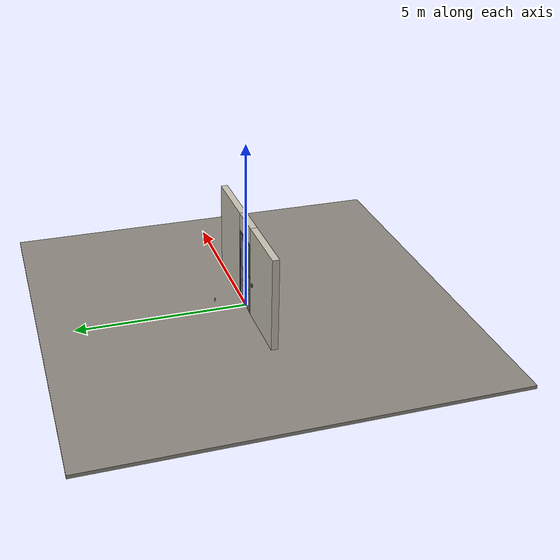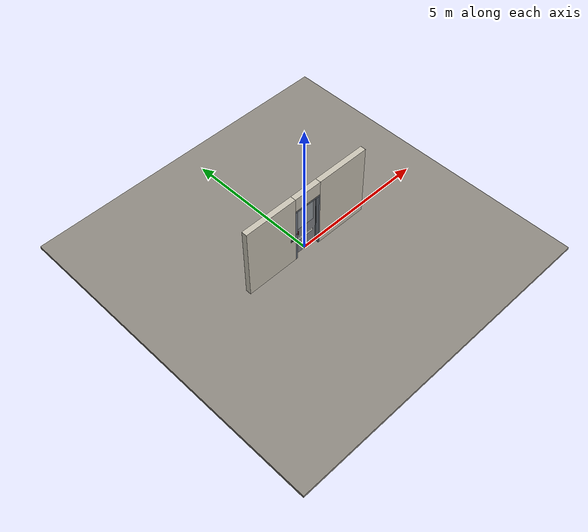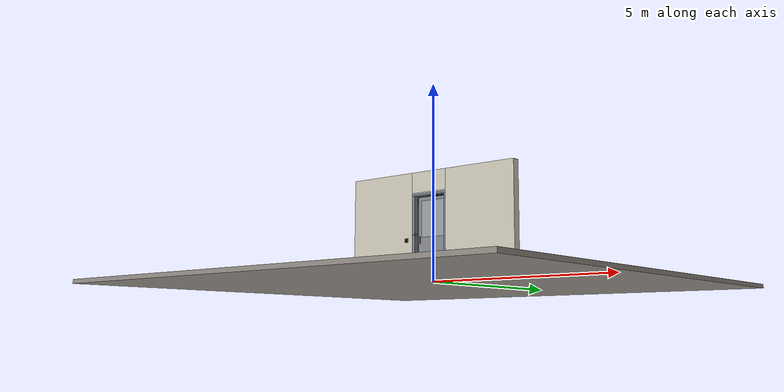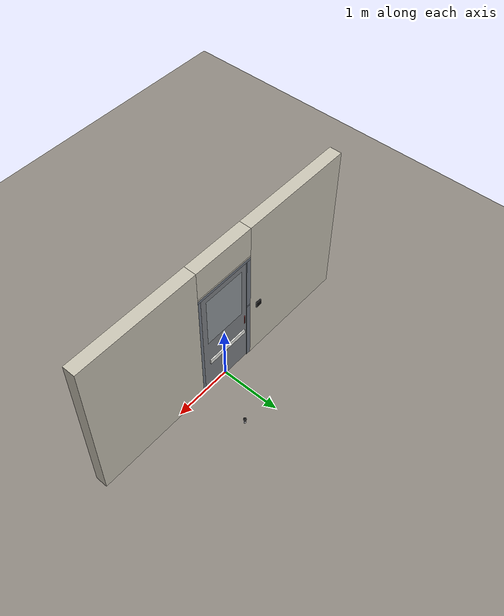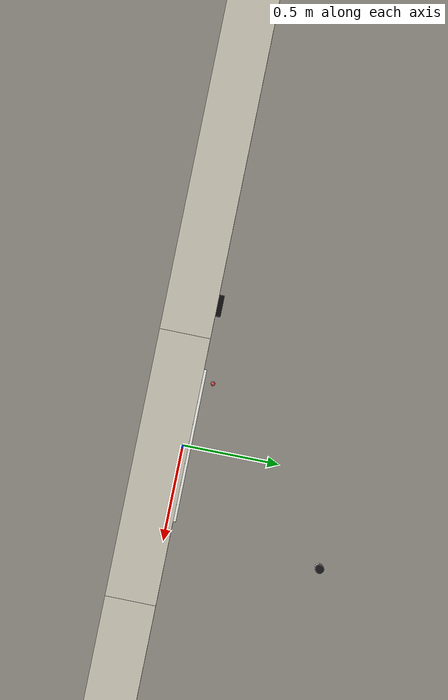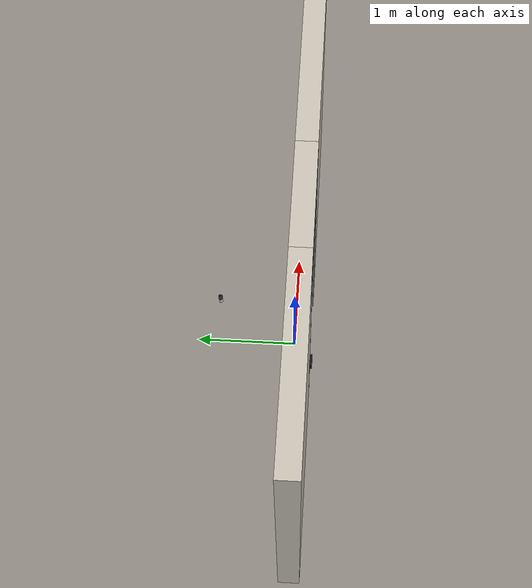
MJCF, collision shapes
<?xml version="1.0" ?>
<mujoco model="db0102_automatic_swing_full">
  <compiler angle="radian" meshdir="../../hardware" texturedir="../../textures" autolimits="true" inertiafromgeom="false"/>
  <option timestep="0.002" integrator="implicitfast" cone="elliptic" impratio="10" noslip_iterations="3">
    <flag multiccd="enable"/>
  </option>
  <size memory="16M"/>
  <default>
    <geom condim="4" solref="0.005 1" solimp="0.95 0.99 0.001"/>
    <joint solreflimit="0.005 1" solimplimit="0.95 0.99 0.001"/>
    <tendon solreflimit="0.005 1"/>
    <equality solref="0.002 1"/>
  </default>
  <visual>
    <headlight ambient="0.4 0.4 0.4" diffuse="0.7 0.7 0.7" specular="0.2 0.2 0.2"/>
    <quality shadowsize="4096"/>
    <map znear="0.01" zfar="60"/>
  </visual>
  <asset>
    <mesh name="cyl_face_e9e5036966" file="cyl_face_e9e5036966.obj"/>
    <mesh name="hinge_e22b26c0c1" file="hinge_e22b26c0c1.obj"/>
    <mesh name="hinge_jamb_e1d088f8dc" file="hinge_jamb_e1d088f8dc.obj"/>
    <mesh name="pull_1e5d69a91a" file="pull_1e5d69a91a.obj"/>
    <material name="mat_floor" rgba="0.55 0.53 0.5 1" specular="0.2" shininess="0.15" reflectance="0"/>
    <material name="mat_wall" rgba="0.78 0.76 0.7 1" specular="0.2" shininess="0.1" reflectance="0"/>
    <material name="mat_leaf" rgba="0.5 0.51 0.53 1" specular="0.23" shininess="0.42" reflectance="0.02"/>
    <material name="mat_glass" rgba="0.85 0.92 0.95 0.25" specular="0.2" shininess="0.95" reflectance="0.1"/>
    <material name="mat_hinge" rgba="0.65 0.66 0.68 1" specular="0.74" shininess="0.5" reflectance="0.36"/>
    <material name="mat_op_stainless" rgba="0.75 0.76 0.77 1" specular="0.8" shininess="0.65" reflectance="0.4"/>
    <material name="mat_deadbolt" rgba="0.85 0.66 0.3 1" specular="0.8" shininess="0.75" reflectance="0.4"/>
    <material name="mat_frame" rgba="0.45 0.48 0.52 1" specular="0.32" shininess="0.6" reflectance="0.08"/>
    <material name="mat_seal" rgba="0.1 0.1 0.1 1" specular="0.2" shininess="0.1" reflectance="0"/>
    <material name="mat_closer" rgba="0.22 0.17 0.13 1" specular="0.8" shininess="0.6" reflectance="0.4"/>
    <material name="mat_bumper" rgba="0.92 0.92 0.9 1" specular="0.2" shininess="0.6" reflectance="0"/>
    <material name="mat_wallreader" rgba="0.05 0.05 0.05 1" specular="0.38" shininess="0.3" reflectance="0.12"/>
    <material name="mat_bumper_stop" rgba="0.08 0.08 0.08 1" specular="0.2" shininess="0.1" reflectance="0"/>
    <material name="mat_stop_base" rgba="0.9 0.9 0.92 1" specular="0.8" shininess="0.9" reflectance="0.4"/>
    <texture name="skybox" type="skybox" builtin="gradient" rgb1="0.6 0.7 0.85" rgb2="0.9 0.92 0.95" width="256" height="256"/>
  </asset>
  <worldbody>
    <light name="sun" pos="1.5 -2.5 4" dir="-0.3 0.5 -0.8" directional="true" diffuse="0.8 0.8 0.8" specular="0.3 0.3 0.3" castshadow="true"/>
    <light name="fill" pos="-1.5 2.5 3" dir="0.3 -0.5 -0.7" directional="true" diffuse="0.35 0.35 0.4" castshadow="false"/>
    <camera name="robot_view" pos="0 -2.708813 1.812087" xyaxes="1 0 0 0 0.26963 0.962964" fovy="52"/>
    <camera name="far_view" pos="0 2.566812 1.812087" xyaxes="-1 0 0 0 -0.26963 0.962964" fovy="52"/>
    <camera name="iso" pos="-2.004737 -2.286763 2.234138" xyaxes="0.741536 -0.670913 0 0.242917 0.268487 0.932151" fovy="46"/>
    <camera name="detail_handle" pos="-0.1715 -0.882 1.32" xyaxes="0.97561 0.219512 0 -0.070934 0.315262 0.94635" fovy="38"/>
    <geom name="floor" type="box" size="6 6 0.05" pos="0 0 -0.05" material="mat_floor" group="0" contype="1" conaffinity="1" friction="0.8 0.005 0.0001" density="2400"/>
    <geom name="wall_left" type="box" size="0.97975 0.1 1.3735" pos="-1.52025 -0.071 1.3735" material="mat_wall" group="0" contype="1" conaffinity="1" friction="0.6 0.005 0.0001" density="800"/>
    <geom name="wall_right" type="box" size="0.99475 0.1 1.3735" pos="1.50525 -0.071 1.3735" material="mat_wall" group="0" contype="1" conaffinity="1" friction="0.6 0.005 0.0001" density="800"/>
    <geom name="wall_header" type="box" size="0.5255 0.1 0.26" pos="-0.015 -0.071 2.487" material="mat_wall" group="0" contype="1" conaffinity="1" friction="0.6 0.005 0.0001" density="800"/>
    <geom name="hinge_0_jamb" type="mesh" mesh="hinge_jamb_e1d088f8dc" pos="0.4575 0.029 0.259" quat="0 0 0 1" material="mat_hinge" group="1" contype="0" conaffinity="0" density="7850"/>
    <geom name="hinge_1_jamb" type="mesh" mesh="hinge_jamb_e1d088f8dc" pos="0.4575 0.029 1.076" quat="0 0 0 1" material="mat_hinge" group="1" contype="0" conaffinity="0" density="7850"/>
    <geom name="hinge_2_jamb" type="mesh" mesh="hinge_jamb_e1d088f8dc" pos="0.4575 0.029 1.963" quat="0 0 0 1" material="mat_hinge" group="1" contype="0" conaffinity="0" density="7850"/>
    <geom name="leaf_deadbolt_strike_b" type="box" size="0.0155 0.003 0.0005" pos="-0.46 0 1.1615" quat="0.5 0.5 0.5 0.5" material="mat_deadbolt" group="1" contype="0" conaffinity="0" density="7800"/>
    <geom name="leaf_deadbolt_strike_l" type="box" size="0.003 0.0155 0.0005" pos="-0.46 -0.0125 1.18" quat="0.5 0.5 0.5 0.5" material="mat_deadbolt" group="1" contype="0" conaffinity="0" density="7800"/>
    <geom name="leaf_deadbolt_strike_t" type="box" size="0.0155 0.003 0.0005" pos="-0.46 0 1.1985" quat="0.5 0.5 0.5 0.5" material="mat_deadbolt" group="1" contype="0" conaffinity="0" density="7800"/>
    <geom name="leaf_deadbolt_strike_r" type="box" size="0.003 0.0155 0.0005" pos="-0.46 0.0125 1.18" quat="0.5 0.5 0.5 0.5" material="mat_deadbolt" group="1" contype="0" conaffinity="0" density="7800"/>
    <geom name="jamb_hinge" type="box" size="0.025 0.1 1.0735" pos="0.4855 -0.071 1.0735" material="mat_frame" group="0" contype="1" conaffinity="1" friction="0.6 0.005 0.0001" density="300"/>
    <geom name="strike_1180_wall_n" type="box" size="0.04 0.08075 0.0155" pos="-0.5005 -0.09025 1.18" material="mat_frame" group="0" contype="1" conaffinity="1" friction="0.6 0.005 0.0001" density="300"/>
    <geom name="strike_1180_wall_p" type="box" size="0.04 0.00975 0.0155" pos="-0.5005 0.01925 1.18" material="mat_frame" group="0" contype="1" conaffinity="1" friction="0.6 0.005 0.0001" density="300"/>
    <geom name="strike_1180_back" type="box" size="0.0253 0.0095 0.0155" pos="-0.5152 0 1.18" material="mat_frame" group="0" contype="1" conaffinity="1" friction="0.6 0.005 0.0001" density="300"/>
    <geom name="jamb_strike_0" type="box" size="0.04 0.1 0.58225" pos="-0.5005 -0.071 0.58225" material="mat_frame" group="0" contype="1" conaffinity="1" friction="0.6 0.005 0.0001" density="300"/>
    <geom name="jamb_strike_1" type="box" size="0.04 0.1 0.47575" pos="-0.5005 -0.071 1.67125" material="mat_frame" group="0" contype="1" conaffinity="1" friction="0.6 0.005 0.0001" density="300"/>
    <geom name="jamb_head" type="box" size="0.5255 0.1 0.025" pos="-0.015 -0.071 2.172" material="mat_frame" group="0" contype="1" conaffinity="1" friction="0.6 0.005 0.0001" density="300"/>
    <geom name="head_stud" type="box" size="0.5255 0.1 0.015" pos="-0.015 -0.071 2.212" material="mat_wall" group="0" contype="1" conaffinity="1" friction="0.6 0.005 0.0001" density="500"/>
    <geom name="stop_hinge" type="box" size="0.0055 0.016 1.0735" pos="0.455 -0.0385 1.0735" material="mat_frame" group="0" contype="1" conaffinity="1" friction="0.6 0.005 0.0001" density="300"/>
    <geom name="stop_strike" type="box" size="0.0055 0.016 1.0735" pos="-0.455 -0.0385 1.0735" material="mat_frame" group="0" contype="1" conaffinity="1" friction="0.6 0.005 0.0001" density="300"/>
    <geom name="stop_head" type="box" size="0.4605 0.016 0.0055" pos="0 -0.0385 2.1415" material="mat_frame" group="0" contype="1" conaffinity="1" friction="0.6 0.005 0.0001" density="300"/>
    <geom name="seal_hinge" type="box" size="0.004 0.004 1.0735" pos="0.4575 -0.026 1.0735" material="mat_seal" group="1" contype="0" conaffinity="0" density="1100"/>
    <geom name="seal_strike" type="box" size="0.004 0.004 1.0735" pos="-0.4575 -0.026 1.0735" material="mat_seal" group="1" contype="0" conaffinity="0" density="1100"/>
    <geom name="seal_head" type="box" size="0.4405 0.004 0.008" pos="0 -0.026 2.135" material="mat_seal" group="1" contype="0" conaffinity="0" density="1100"/>
    <geom name="auto_operator_header" type="box" size="0.45 0.065 0.065" pos="0 -0.097 2.228" material="mat_closer" group="0" contype="1" conaffinity="1" friction="0.6 0.005 0.0001" density="1500"/>
    <geom name="wave_sensor_n" type="box" size="0.05 0.012 0.05" pos="-0.7105 -0.183 1.05" material="mat_wallreader" group="0" contype="1" conaffinity="1" friction="0.6 0.005 0.0001" density="1000"/>
    <geom name="wave_sensor_p" type="box" size="0.05 0.012 0.05" pos="-0.7105 0.041 1.05" material="mat_wallreader" group="0" contype="1" conaffinity="1" friction="0.6 0.005 0.0001" density="1000"/>
    <geom name="wave_sensor_p_pad" type="box" size="0.04 0.1005 0.04" pos="-0.7105 -0.071 1.05" material="mat_wallreader" group="1" contype="0" conaffinity="0" density="7850"/>
    <geom name="door_stop_base" type="cylinder" size="0.022 0.003" pos="0.4735 0.8059 0.003" material="mat_stop_base" group="0" contype="1" conaffinity="1" friction="0.6 0.005 0.0001" density="7850"/>
    <geom name="door_stop_post" type="cylinder" size="0.012 0.0245" pos="0.4735 0.8059 0.0305" material="mat_stop_base" group="0" contype="1" conaffinity="1" friction="0.6 0.005 0.0001" density="7850"/>
    <geom name="door_stop_bumper" type="cylinder" size="0.022 0.02" pos="0.4735 0.8059 0.075" material="mat_bumper_stop" group="0" contype="1" conaffinity="1" friction="0.6 0.005 0.0001" density="1100"/>
    <site name="approach_point" pos="0 -1.5 0" quat="1 0 0 0" size="0.05" rgba="0.2 0.9 0.2 0.5" group="4"/>
    <site name="goal_point" pos="0 1.5 0" quat="1 0 0 0" size="0.05" rgba="0.2 0.9 0.2 0.5" group="4"/>
    <site name="door_plane_center" pos="0 0 1.0735" quat="1 0 0 0" size="0.02" rgba="0.2 0.9 0.2 0.5" group="4"/>
    <body name="leaf" pos="0.4605 0 0">
      <inertial pos="-0.462275 -0.000387 1.051783" mass="36.918787" quat="0.496263 0.4964 0.504637 -0.502644" diaginertia="2.689210631 13.282563769 15.937912371"/>
      <joint name="leaf_hinge" type="hinge" axis="0 0 -1" pos="-0.003 0.029 0" limited="true" range="0 1.570796" solreflimit="0.02 1" damping="15.268966" frictionloss="1.979641" stiffness="12.827888" springref="-1.543512" armature="0.02"/>
      <geom name="leaf_slab" type="box" size="0.457 0.022 1.067" pos="-0.46 0 1.076" material="mat_leaf" group="0" contype="1" conaffinity="1" friction="0.4 0.005 0.0001" density="1"/>
      <geom name="leaf_glass_0" type="box" size="0.35646 0.0228 0.45881" pos="-0.46 0 1.57749" material="mat_glass" group="1" contype="0" conaffinity="0" density="1"/>
      <geom name="hinge_0" type="mesh" mesh="hinge_e22b26c0c1" pos="-0.003 0.029 0.259" quat="0 0 0 1" material="mat_hinge" group="1" contype="0" conaffinity="0" density="7850"/>
      <geom name="hinge_1" type="mesh" mesh="hinge_e22b26c0c1" pos="-0.003 0.029 1.076" quat="0 0 0 1" material="mat_hinge" group="1" contype="0" conaffinity="0" density="7850"/>
      <geom name="hinge_2" type="mesh" mesh="hinge_e22b26c0c1" pos="-0.003 0.029 1.963" quat="0 0 0 1" material="mat_hinge" group="1" contype="0" conaffinity="0" density="7850"/>
      <geom name="leaf_pull_n" type="mesh" mesh="pull_1e5d69a91a" pos="-0.812 -0.022 1.04" quat="0 0 -0.707107 0.707107" material="mat_op_stainless" group="1" contype="0" conaffinity="0" density="3000"/>
      <geom name="leaf_pull_col_n" type="capsule" size="0.0095 0.08" pos="-0.812 -0.082 1.04" material="mat_op_stainless" group="3" contype="1" conaffinity="1" rgba="0.8 0.3 0.3 0.25" friction="0.7 0.01 0.0001" density="3000"/>
      <geom name="leaf_pull_p" type="mesh" mesh="pull_1e5d69a91a" pos="-0.812 0.022 1.04" quat="0 0 0.707107 0.707107" material="mat_op_stainless" group="1" contype="0" conaffinity="0" density="3000"/>
      <geom name="leaf_pull_col_p" type="capsule" size="0.0095 0.08" pos="-0.812 0.082 1.04" material="mat_op_stainless" group="3" contype="1" conaffinity="1" rgba="0.8 0.3 0.3 0.25" friction="0.7 0.01 0.0001" density="3000"/>
      <geom name="leaf_deadbolt_faceplate" type="box" size="0.0006 0.014 0.0245" pos="-0.9164 0 1.18" material="mat_deadbolt" group="1" contype="0" conaffinity="0" density="8500"/>
      <geom name="leaf_deadbolt_cylinder_face" type="mesh" mesh="cyl_face_e9e5036966" pos="-0.852 -0.022 1.18" quat="0 0 -0.707107 0.707107" material="mat_deadbolt" group="1" contype="0" conaffinity="0" density="7100"/>
      <geom name="auto_operator_arm" type="box" size="0.22 0.008 0.008" pos="-0.25 -0.052 2.114" material="mat_closer" group="1" contype="0" conaffinity="0" density="2700"/>
      <geom name="auto_operator_arm_shoe" type="box" size="0.03 0.016 0.014" pos="-0.44 -0.038 2.114" material="mat_closer" group="1" contype="0" conaffinity="0" density="2700"/>
      <geom name="bumper_rail_n" type="box" size="0.372 0.01 0.04" pos="-0.495 -0.032 0.659" material="mat_bumper" group="0" contype="1" conaffinity="1" friction="0.6 0.005 0.0001" density="1200"/>
      <geom name="bumper_rail_p" type="box" size="0.372 0.01 0.04" pos="-0.495 0.032 0.659" material="mat_bumper" group="0" contype="1" conaffinity="1" friction="0.6 0.005 0.0001" density="1200"/>
      <site name="leaf_pull_grip_n" pos="-0.812 -0.082 1.04" quat="1 0 0 0" size="0.012" rgba="0.2 0.9 0.2 0.5" group="4"/>
      <site name="leaf_pull_grip_p" pos="-0.812 0.082 1.04" quat="1 0 0 0" size="0.012" rgba="0.2 0.9 0.2 0.5" group="4"/>
      <site name="leaf_edge_mid" pos="-0.917 0 1.067" quat="1 0 0 0" size="0.02" rgba="0.2 0.9 0.2 0.5" group="4"/>
      <body name="leaf_deadbolt" pos="-0.917 0 1.18">
        <inertial pos="0.0023 0 0" mass="0.18836" quat="0 0 0.707107 0.707107" diaginertia="0.000013829 0.000052194 0.000057986"/>
        <geom name="leaf_deadbolt_box" type="box" size="0.0277 0.008 0.0125" pos="0.0023 0 0" material="mat_deadbolt" group="0" contype="1" conaffinity="1" friction="0.3 0.005 0.0001" density="8500"/>
      </body>
    </body>
  </worldbody>
  <actuator>
    <position name="swing_operator" joint="leaf_hinge" kp="150" kv="40" forcerange="-60 60" ctrlrange="0 1.6"/>
  </actuator>
  <sensor>
    <jointpos name="leaf_hinge_pos" joint="leaf_hinge"/>
    <jointvel name="leaf_hinge_vel" joint="leaf_hinge"/>
  </sensor>
</mujoco>
